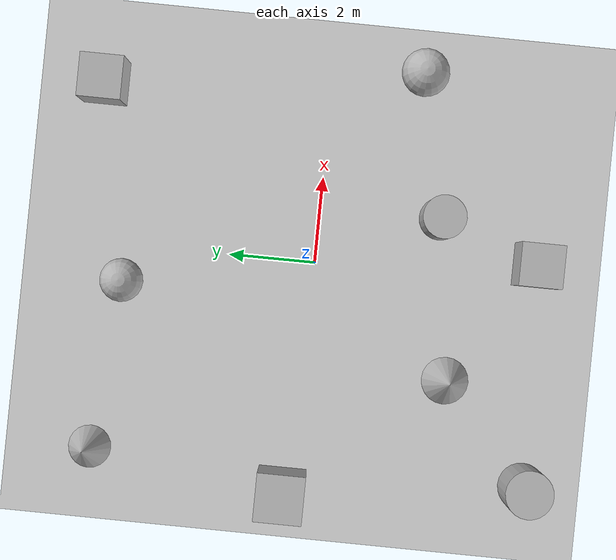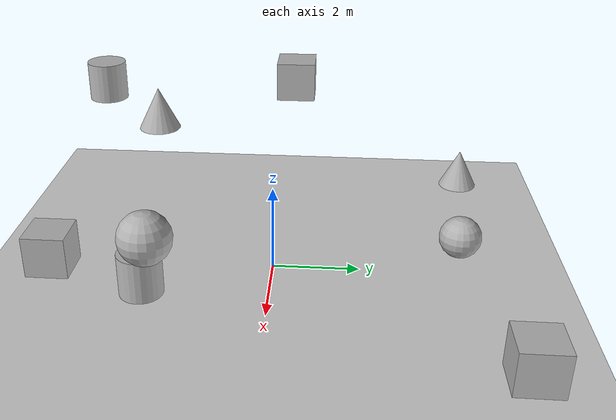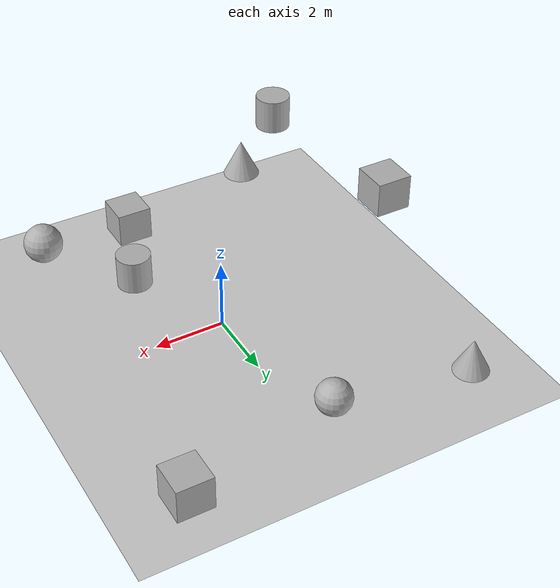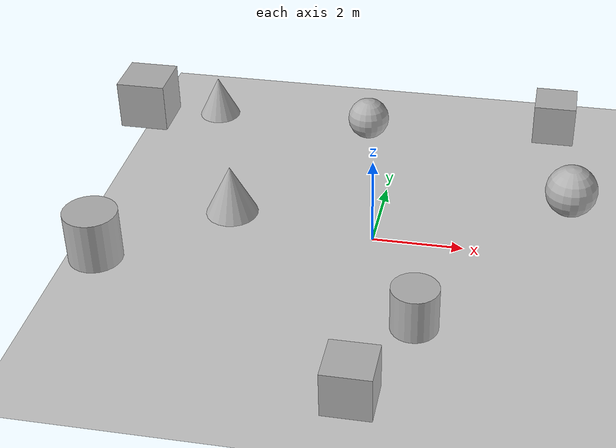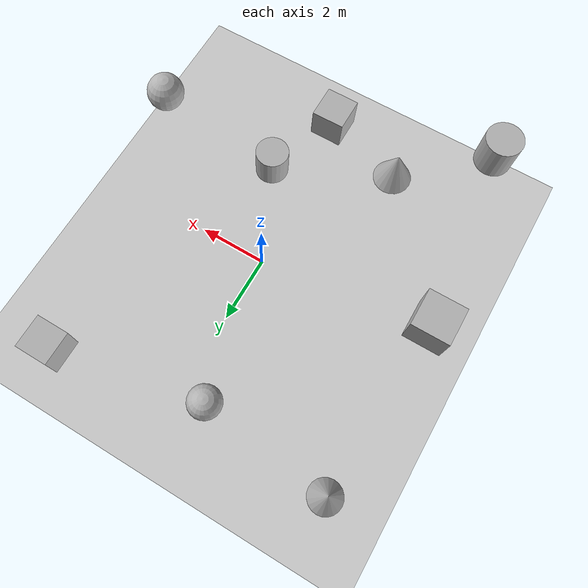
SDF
<sdf version='1.10'>
  <world name='empty'>
    <physics name='1ms' type='ignored'>
      <max_step_size>0.001</max_step_size>
      <real_time_factor>1</real_time_factor>
      <real_time_update_rate>1000</real_time_update_rate>
    </physics>
    <plugin name='gz::sim::systems::Physics' filename='gz-sim-physics-system'/>
    <plugin name='gz::sim::systems::UserCommands' filename='gz-sim-user-commands-system'/>
    <plugin name='gz::sim::systems::SceneBroadcaster' filename='gz-sim-scene-broadcaster-system'/>
    <plugin name='gz::sim::systems::Contact' filename='gz-sim-contact-system'/>
    <plugin
      filename="gz-sim-sensors-system"
      name="gz::sim::systems::Sensors">
      <render_engine>ogre2</render_engine>
    </plugin>
    <gravity>0 0 0</gravity>
    <magnetic_field>0 0 0</magnetic_field>
    <atmosphere type='adiabatic'/>
    <scene>
      <ambient>0.400000006 0.400000006 0.400000006 1</ambient>
      <background>0.699999988 0.699999988 0.699999988 1</background>
      <shadows>true</shadows>
    </scene>
    <model name='ground_plane'>
      <static>true</static>
      <link name='link'>
        <collision name='collision'>
          <geometry>
            <plane>
              <normal>0 0 1</normal>
              <size>100 100</size>
            </plane>
          </geometry>
          <surface>
            <friction>
              <ode/>
            </friction>
            <bounce/>
            <contact/>
          </surface>
        </collision>
        <visual name='visual'>
          <geometry>
            <plane>
              <normal>0 0 1</normal>
              <size>100 100</size>
            </plane>
          </geometry>
          <material>
            <ambient>0.800000012 0.800000012 0.800000012 1</ambient>
            <diffuse>0.800000012 0.800000012 0.800000012 1</diffuse>
            <specular>0.800000012 0.800000012 0.800000012 1</specular>
          </material>
        </visual>
        <pose>0 0 0 0 0 0</pose>
        <inertial>
          <pose>0 0 0 0 0 0</pose>
          <mass>1</mass>
          <inertia>
            <ixx>1</ixx>
            <ixy>0</ixy>
            <ixz>0</ixz>
            <iyy>1</iyy>
            <iyz>0</iyz>
            <izz>1</izz>
          </inertia>
        </inertial>
        <enable_wind>false</enable_wind>
      </link>
      <pose>0 0 0 0 0 0</pose>
      <self_collide>false</self_collide>
    </model>
    <model name='box'>
      <pose>-4.9000000000000004 0.25 3 1.3495155344586159e-38 0 0</pose>
      <link name='box_link'>
        <inertial>
          <inertia>
            <ixx>0.16666</ixx>
            <ixy>0</ixy>
            <ixz>0</ixz>
            <iyy>0.16666</iyy>
            <iyz>0</iyz>
            <izz>0.16666</izz>
          </inertia>
          <mass>1</mass>
          <pose>0 0 0 0 0 0</pose>
        </inertial>
        <collision name='box_collision'>
          <geometry>
            <box>
              <size>1 1 1</size>
            </box>
          </geometry>
          <surface>
            <friction>
              <ode/>
            </friction>
            <bounce/>
            <contact/>
          </surface>
        </collision>
        <visual name='box_visual'>
          <geometry>
            <box>
              <size>1 1 1</size>
            </box>
          </geometry>
          <material>
            <ambient>0.300000012 0.300000012 0.300000012 1</ambient>
            <diffuse>0.699999988 0.699999988 0.699999988 1</diffuse>
            <specular>1 1 1 1</specular>
          </material>
        </visual>
        <pose>0 0 0 0 0 0</pose>
        <enable_wind>false</enable_wind>
      </link>
      <static>false</static>
      <self_collide>false</self_collide>
    </model>
    <model name='box_0'>
      <pose>3.7079602466738706 5.2326643675809912 0.5 0 0 0</pose>
      <link name='box_link'>
        <inertial>
          <inertia>
            <ixx>0.16666</ixx>
            <ixy>0</ixy>
            <ixz>0</ixz>
            <iyy>0.16666</iyy>
            <iyz>0</iyz>
            <izz>0.16666</izz>
          </inertia>
          <mass>1</mass>
          <pose>0 0 0 0 0 0</pose>
        </inertial>
        <collision name='box_collision'>
          <geometry>
            <box>
              <size>1 1 1</size>
            </box>
          </geometry>
          <surface>
            <friction>
              <ode/>
            </friction>
            <bounce/>
            <contact/>
          </surface>
        </collision>
        <visual name='box_visual'>
          <geometry>
            <box>
              <size>1 1 1</size>
            </box>
          </geometry>
          <material>
            <ambient>0.300000012 0.300000012 0.300000012 1</ambient>
            <diffuse>0.699999988 0.699999988 0.699999988 1</diffuse>
            <specular>1 1 1 1</specular>
          </material>
        </visual>
        <pose>0 0 0 0 0 0</pose>
        <enable_wind>false</enable_wind>
      </link>
      <static>false</static>
      <self_collide>false</self_collide>
    </model>
    <model name='box_1'>
      <pose>0.43815268670273255 -5.1120020892852969 0.5 0 0 0</pose>
      <link name='box_link'>
        <inertial>
          <inertia>
            <ixx>0.16666</ixx>
            <ixy>0</ixy>
            <ixz>0</ixz>
            <iyy>0.16666</iyy>
            <iyz>0</iyz>
            <izz>0.16666</izz>
          </inertia>
          <mass>1</mass>
          <pose>0 0 0 0 0 0</pose>
        </inertial>
        <collision name='box_collision'>
          <geometry>
            <box>
              <size>1 1 1</size>
            </box>
          </geometry>
          <surface>
            <friction>
              <ode/>
            </friction>
            <bounce/>
            <contact/>
          </surface>
        </collision>
        <visual name='box_visual'>
          <geometry>
            <box>
              <size>1 1 1</size>
            </box>
          </geometry>
          <material>
            <ambient>0.300000012 0.300000012 0.300000012 1</ambient>
            <diffuse>0.699999988 0.699999988 0.699999988 1</diffuse>
            <specular>1 1 1 1</specular>
          </material>
        </visual>
        <pose>0 0 0 0 0 0</pose>
        <enable_wind>false</enable_wind>
      </link>
      <static>false</static>
      <self_collide>false</self_collide>
    </model>
    <model name='sphere'>
      <pose>-0.83573656966757959 4.3775028104771536 0.5 0 0 0</pose>
      <link name='sphere_link'>
        <inertial>
          <inertia>
            <ixx>0.10000000000000001</ixx>
            <ixy>0</ixy>
            <ixz>0</ixz>
            <iyy>0.10000000000000001</iyy>
            <iyz>0</iyz>
            <izz>0.10000000000000001</izz>
          </inertia>
          <mass>1</mass>
          <pose>0 0 0 0 0 0</pose>
        </inertial>
        <collision name='sphere_collision'>
          <geometry>
            <sphere>
              <radius>0.5</radius>
            </sphere>
          </geometry>
          <surface>
            <friction>
              <ode/>
            </friction>
            <bounce/>
            <contact/>
          </surface>
        </collision>
        <visual name='sphere_visual'>
          <geometry>
            <sphere>
              <radius>0.5</radius>
            </sphere>
          </geometry>
          <material>
            <ambient>0.300000012 0.300000012 0.300000012 1</ambient>
            <diffuse>0.699999988 0.699999988 0.699999988 1</diffuse>
            <specular>1 1 1 1</specular>
          </material>
        </visual>
        <pose>0 0 0 0 0 0</pose>
        <enable_wind>false</enable_wind>
      </link>
      <static>false</static>
      <self_collide>false</self_collide>
    </model>
    <model name='sphere_0'>
      <pose>4.1200000000000001 -1.8999999999999999 3 0 0 0</pose>
      <link name='sphere_link'>
        <inertial>
          <inertia>
            <ixx>0.10000000000000001</ixx>
            <ixy>0</ixy>
            <ixz>0</ixz>
            <iyy>0.10000000000000001</iyy>
            <iyz>0</iyz>
            <izz>0.10000000000000001</izz>
          </inertia>
          <mass>1</mass>
          <pose>0 0 0 0 0 0</pose>
        </inertial>
        <collision name='sphere_collision'>
          <geometry>
            <sphere>
              <radius>0.5</radius>
            </sphere>
          </geometry>
          <surface>
            <friction>
              <ode/>
            </friction>
            <bounce/>
            <contact/>
          </surface>
        </collision>
        <visual name='sphere_visual'>
          <geometry>
            <sphere>
              <radius>0.5</radius>
            </sphere>
          </geometry>
          <material>
            <ambient>0.300000012 0.300000012 0.300000012 1</ambient>
            <diffuse>0.699999988 0.699999988 0.699999988 1</diffuse>
            <specular>1 1 1 1</specular>
          </material>
        </visual>
        <pose>0 0 0 0 0 0</pose>
        <enable_wind>false</enable_wind>
      </link>
      <static>false</static>
      <self_collide>false</self_collide>
    </model>
    <model name='cone'>
      <pose>-2.2400000000000002 -2.98 3 0 0 0</pose>
      <link name='cone_link'>
        <inertial>
          <inertia>
            <ixx>0.074999999999999997</ixx>
            <ixy>0</ixy>
            <ixz>0</ixz>
            <iyy>0.074999999999999997</iyy>
            <iyz>0</iyz>
            <izz>0.074999999999999997</izz>
          </inertia>
          <mass>1</mass>
          <pose>0 0 0 0 0 0</pose>
        </inertial>
        <collision name='cone_collision'>
          <geometry>
            <cone>
              <radius>0.5</radius>
              <length>1</length>
            </cone>
          </geometry>
          <surface>
            <friction>
              <ode/>
            </friction>
            <bounce/>
            <contact/>
          </surface>
        </collision>
        <visual name='cone_visual'>
          <geometry>
            <cone>
              <radius>0.5</radius>
              <length>1</length>
            </cone>
          </geometry>
          <material>
            <ambient>0.300000012 0.300000012 0.300000012 1</ambient>
            <diffuse>0.699999988 0.699999988 0.699999988 1</diffuse>
            <specular>1 1 1 1</specular>
          </material>
        </visual>
        <pose>0 0 0 0 0 0</pose>
        <enable_wind>false</enable_wind>
      </link>
      <static>false</static>
      <self_collide>false</self_collide>
    </model>
    <model name='cone_0'>
      <pose>-4.7840615659656205 4.8134286989626478 0.5 0 0 0</pose>
      <link name='cone_link'>
        <inertial>
          <inertia>
            <ixx>0.074999999999999997</ixx>
            <ixy>0</ixy>
            <ixz>0</ixz>
            <iyy>0.074999999999999997</iyy>
            <iyz>0</iyz>
            <izz>0.074999999999999997</izz>
          </inertia>
          <mass>1</mass>
          <pose>0 0 0 0 0 0</pose>
        </inertial>
        <collision name='cone_collision'>
          <geometry>
            <cone>
              <radius>0.5</radius>
              <length>1</length>
            </cone>
          </geometry>
          <surface>
            <friction>
              <ode/>
            </friction>
            <bounce/>
            <contact/>
          </surface>
        </collision>
        <visual name='cone_visual'>
          <geometry>
            <cone>
              <radius>0.5</radius>
              <length>1</length>
            </cone>
          </geometry>
          <material>
            <ambient>0.300000012 0.300000012 0.300000012 1</ambient>
            <diffuse>0.699999988 0.699999988 0.699999988 1</diffuse>
            <specular>1 1 1 1</specular>
          </material>
        </visual>
        <pose>0 0 0 0 0 0</pose>
        <enable_wind>false</enable_wind>
      </link>
      <static>false</static>
      <self_collide>false</self_collide>
    </model>
    <model name='cylinder'>
      <pose>1.3137166173416901 -2.8187867622392337 0.5 0 0 0</pose>
      <link name='cylinder_link'>
        <inertial>
          <inertia>
            <ixx>0.14580000000000001</ixx>
            <ixy>0</ixy>
            <ixz>0</ixz>
            <iyy>0.14580000000000001</iyy>
            <iyz>0</iyz>
            <izz>0.125</izz>
          </inertia>
          <mass>1</mass>
          <pose>0 0 0 0 0 0</pose>
        </inertial>
        <collision name='cylinder_collision'>
          <geometry>
            <cylinder>
              <radius>0.5</radius>
              <length>1</length>
            </cylinder>
          </geometry>
          <surface>
            <friction>
              <ode/>
            </friction>
            <bounce/>
            <contact/>
          </surface>
        </collision>
        <visual name='cylinder_visual'>
          <geometry>
            <cylinder>
              <radius>0.5</radius>
              <length>1</length>
            </cylinder>
          </geometry>
          <material>
            <ambient>0.300000012 0.300000012 0.300000012 1</ambient>
            <diffuse>0.699999988 0.699999988 0.699999988 1</diffuse>
            <specular>1 1 1 1</specular>
          </material>
        </visual>
        <pose>0 0 0 0 0 0</pose>
        <enable_wind>false</enable_wind>
      </link>
      <static>false</static>
      <self_collide>false</self_collide>
    </model>
    <model name='cylinder_0'>
      <pose>-4.3099999999999996 -4.8099999999999996 3 0 0 0</pose>
      <link name='cylinder_link'>
        <inertial>
          <inertia>
            <ixx>0.14580000000000001</ixx>
            <ixy>0</ixy>
            <ixz>0</ixz>
            <iyy>0.14580000000000001</iyy>
            <iyz>0</iyz>
            <izz>0.125</izz>
          </inertia>
          <mass>1</mass>
          <pose>0 0 0 0 0 0</pose>
        </inertial>
        <collision name='cylinder_collision'>
          <geometry>
            <cylinder>
              <radius>0.5</radius>
              <length>1</length>
            </cylinder>
          </geometry>
          <surface>
            <friction>
              <ode/>
            </friction>
            <bounce/>
            <contact/>
          </surface>
        </collision>
        <visual name='cylinder_visual'>
          <geometry>
            <cylinder>
              <radius>0.5</radius>
              <length>1</length>
            </cylinder>
          </geometry>
          <material>
            <ambient>0.300000012 0.300000012 0.300000012 1</ambient>
            <diffuse>0.699999988 0.699999988 0.699999988 1</diffuse>
            <specular>1 1 1 1</specular>
          </material>
        </visual>
        <pose>0 0 0 0 0 0</pose>
        <enable_wind>false</enable_wind>
      </link>
      <static>false</static>
      <self_collide>false</self_collide>
    </model>
    <light name='sun' type='directional'>
      <pose>0 0 10 0 0 0</pose>
      <cast_shadows>true</cast_shadows>
      <intensity>1</intensity>
      <direction>-0.5 0.10000000000000001 -0.90000000000000002</direction>
      <diffuse>0.800000012 0.800000012 0.800000012 1</diffuse>
      <specular>0.200000003 0.200000003 0.200000003 1</specular>
      <attenuation>
        <range>1000</range>
        <linear>0.0099999997764825821</linear>
        <constant>0.89999997615814209</constant>
        <quadratic>0.0010000000474974513</quadratic>
      </attenuation>
      <spot>
        <inner_angle>0</inner_angle>
        <outer_angle>0</outer_angle>
        <falloff>0</falloff>
      </spot>
    </light>
  </world>
</sdf>
